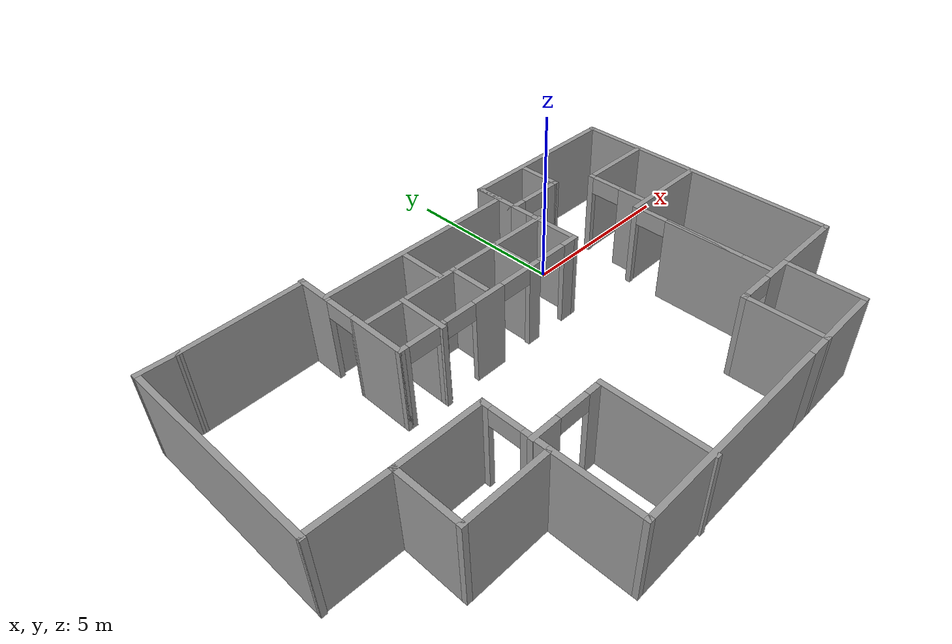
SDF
<?xml version='1.0'?>
<sdf version='1.6'>
  <model name='Building'>
    <pose frame=''>-3.39198 -3.1801 0 0 -0 0</pose>
    <link name='Wall_1'>
      <collision name='Wall_1_Collision'>
        <geometry>
          <box>
            <size>3.50098 0.15 2.5</size>
          </box>
        </geometry>
        <pose frame=''>0 0 1.25 0 -0 0</pose>
      </collision>
      <visual name='Wall_1_Visual'>
        <pose frame=''>0 0 1.25 0 -0 0</pose>
        <geometry>
          <box>
            <size>3.50098 0.15 2.5</size>
          </box>
        </geometry>
        <material>
          <script>
            <uri>file://media/materials/scripts/gazebo.material</uri>
            <name>Gazebo/Grey</name>
          </script>
          <ambient>1 1 1 1</ambient>
        </material>
        <meta>
          <layer>0</layer>
        </meta>
      </visual>
      <pose frame=''>-4.87425 5.02555 0 0 -0 0.024148</pose>
    </link>
    <link name='Wall_10'>
      <collision name='Wall_10_Collision'>
        <geometry>
          <box>
            <size>6 0.15 2.5</size>
          </box>
        </geometry>
        <pose frame=''>0 0 1.25 0 -0 0</pose>
      </collision>
      <visual name='Wall_10_Visual'>
        <pose frame=''>0 0 1.25 0 -0 0</pose>
        <geometry>
          <box>
            <size>6 0.15 2.5</size>
          </box>
        </geometry>
        <material>
          <script>
            <uri>file://media/materials/scripts/gazebo.material</uri>
            <name>Gazebo/Grey</name>
          </script>
          <ambient>1 1 1 1</ambient>
        </material>
        <meta>
          <layer>0</layer>
        </meta>
      </visual>
      <pose frame=''>-0.124254 -5.04582 0 0 -0 3.14159</pose>
    </link>
    <link name='Wall_11'>
      <collision name='Wall_11_Collision'>
        <geometry>
          <box>
            <size>2.5 0.15 2.5</size>
          </box>
        </geometry>
        <pose frame=''>0 0 1.25 0 -0 0</pose>
      </collision>
      <visual name='Wall_11_Visual'>
        <pose frame=''>0 0 1.25 0 -0 0</pose>
        <geometry>
          <box>
            <size>2.5 0.15 2.5</size>
          </box>
        </geometry>
        <material>
          <script>
            <uri>file://media/materials/scripts/gazebo.material</uri>
            <name>Gazebo/Grey</name>
          </script>
          <ambient>1 1 1 1</ambient>
        </material>
        <meta>
          <layer>0</layer>
        </meta>
      </visual>
      <pose frame=''>-3.04925 -3.87082 0 0 -0 1.5708</pose>
    </link>
    <link name='Wall_12'>
      <collision name='Wall_12_Collision'>
        <geometry>
          <box>
            <size>2.5 0.15 2.5</size>
          </box>
        </geometry>
        <pose frame=''>0 0 1.25 0 -0 0</pose>
      </collision>
      <visual name='Wall_12_Visual'>
        <pose frame=''>0 0 1.25 0 -0 0</pose>
        <geometry>
          <box>
            <size>2.5 0.15 2.5</size>
          </box>
        </geometry>
        <material>
          <script>
            <uri>file://media/materials/scripts/gazebo.material</uri>
            <name>Gazebo/Grey</name>
          </script>
          <ambient>1 1 1 1</ambient>
        </material>
        <meta>
          <layer>0</layer>
        </meta>
      </visual>
      <pose frame=''>-4.22425 -2.69582 0 0 -0 3.14159</pose>
    </link>
    <link name='Wall_13'>
      <collision name='Wall_13_Collision'>
        <geometry>
          <box>
            <size>2 0.15 2.5</size>
          </box>
        </geometry>
        <pose frame=''>0 0 1.25 0 -0 0</pose>
      </collision>
      <visual name='Wall_13_Visual'>
        <pose frame=''>0 0 1.25 0 -0 0</pose>
        <geometry>
          <box>
            <size>2 0.15 2.5</size>
          </box>
        </geometry>
        <material>
          <script>
            <uri>file://media/materials/scripts/gazebo.material</uri>
            <name>Gazebo/Grey</name>
          </script>
          <ambient>1 1 1 1</ambient>
        </material>
        <meta>
          <layer>0</layer>
        </meta>
      </visual>
      <pose frame=''>-5.39925 -1.77082 0 0 -0 1.5708</pose>
    </link>
    <link name='Wall_14'>
      <collision name='Wall_14_Collision'>
        <geometry>
          <box>
            <size>2.25039 0.15 2.5</size>
          </box>
        </geometry>
        <pose frame=''>0 0 1.25 0 -0 0</pose>
      </collision>
      <visual name='Wall_14_Visual'>
        <pose frame=''>0 0 1.25 0 -0 0</pose>
        <geometry>
          <box>
            <size>2.25039 0.15 2.5</size>
          </box>
        </geometry>
        <material>
          <script>
            <uri>file://media/materials/scripts/gazebo.material</uri>
            <name>Gazebo/Grey</name>
          </script>
          <ambient>1 1 1 1</ambient>
        </material>
        <meta>
          <layer>0</layer>
        </meta>
      </visual>
      <pose frame=''>-6.44925 -0.825593 0 0 -0 3.12233</pose>
    </link>
    <link name='Wall_15'>
      <collision name='Wall_15_Collision'>
        <geometry>
          <box>
            <size>6 0.15 2.5</size>
          </box>
        </geometry>
        <pose frame=''>0 0 1.25 0 -0 0</pose>
      </collision>
      <visual name='Wall_15_Visual'>
        <pose frame=''>0 0 1.25 0 -0 0</pose>
        <geometry>
          <box>
            <size>6 0.15 2.5</size>
          </box>
        </geometry>
        <material>
          <script>
            <uri>file://media/materials/scripts/gazebo.material</uri>
            <name>Gazebo/Grey</name>
          </script>
          <ambient>1 1 1 1</ambient>
        </material>
        <meta>
          <layer>0</layer>
        </meta>
      </visual>
      <pose frame=''>-7.49925 2.07918 0 0 -0 1.5708</pose>
    </link>
    <link name='Wall_17'>
      <collision name='Wall_17_Collision'>
        <geometry>
          <box>
            <size>1.10019 0.15 2.5</size>
          </box>
        </geometry>
        <pose frame=''>0 0 1.25 0 -0 0</pose>
      </collision>
      <visual name='Wall_17_Visual'>
        <pose frame=''>0 0 1.25 0 -0 0</pose>
        <geometry>
          <box>
            <size>1.10019 0.15 2.5</size>
          </box>
        </geometry>
        <material>
          <script>
            <uri>file://media/materials/scripts/gazebo.material</uri>
            <name>Gazebo/Grey</name>
          </script>
          <ambient>1 1 1 1</ambient>
        </material>
        <meta>
          <layer>0</layer>
        </meta>
      </visual>
      <pose frame=''>-7.02425 4.99463 0 0 -0 3.1215</pose>
    </link>
    <link name='Wall_19'>
      <collision name='Wall_19_Collision'>
        <geometry>
          <box>
            <size>2.5 0.15 2.5</size>
          </box>
        </geometry>
        <pose frame=''>0 0 1.25 0 -0 0</pose>
      </collision>
      <visual name='Wall_19_Visual'>
        <pose frame=''>0 0 1.25 0 -0 0</pose>
        <geometry>
          <box>
            <size>2.5 0.15 2.5</size>
          </box>
        </geometry>
        <material>
          <script>
            <uri>file://media/materials/scripts/gazebo.material</uri>
            <name>Gazebo/Grey</name>
          </script>
          <ambient>1 1 1 1</ambient>
        </material>
        <meta>
          <layer>0</layer>
        </meta>
      </visual>
      <pose frame=''>-4.22425 -0.84582 0 0 -0 0</pose>
    </link>
    <link name='Wall_2'>
      <pose frame=''>-3.19925 4.141 0 0 0 -1.5708</pose>
      <visual name='Wall_2_Visual_0'>
        <pose frame=''>-0.479527 0 1.25 0 -0 0</pose>
        <geometry>
          <box>
            <size>1.12186 0.15 2.5</size>
          </box>
        </geometry>
        <material>
          <script>
            <uri>file://media/materials/scripts/gazebo.material</uri>
            <name>Gazebo/Grey</name>
          </script>
          <ambient>1 1 1 1</ambient>
        </material>
        <meta>
          <layer>0</layer>
        </meta>
      </visual>
      <collision name='Wall_2_Collision_0'>
        <geometry>
          <box>
            <size>1.12186 0.15 2.5</size>
          </box>
        </geometry>
        <pose frame=''>-0.479527 0 1.25 0 -0 0</pose>
      </collision>
      <visual name='Wall_2_Visual_1'>
        <pose frame=''>1.01093 0 1.25 0 -0 0</pose>
        <geometry>
          <box>
            <size>0.059055 0.15 2.5</size>
          </box>
        </geometry>
        <material>
          <script>
            <uri>file://media/materials/scripts/gazebo.material</uri>
            <name>Gazebo/Grey</name>
          </script>
          <ambient>1 1 1 1</ambient>
        </material>
        <meta>
          <layer>0</layer>
        </meta>
      </visual>
      <collision name='Wall_2_Collision_1'>
        <geometry>
          <box>
            <size>0.059055 0.15 2.5</size>
          </box>
        </geometry>
        <pose frame=''>1.01093 0 1.25 0 -0 0</pose>
      </collision>
      <visual name='Wall_2_Visual_2'>
        <pose frame=''>0.531401 0 2.25 0 -0 0</pose>
        <geometry>
          <box>
            <size>0.9 0.15 0.5</size>
          </box>
        </geometry>
        <material>
          <script>
            <uri>file://media/materials/scripts/gazebo.material</uri>
            <name>Gazebo/Grey</name>
          </script>
          <ambient>1 1 1 1</ambient>
        </material>
        <meta>
          <layer>0</layer>
        </meta>
      </visual>
      <collision name='Wall_2_Collision_2'>
        <geometry>
          <box>
            <size>0.9 0.15 0.5</size>
          </box>
        </geometry>
        <pose frame=''>0.531401 0 2.25 0 -0 0</pose>
      </collision>
    </link>
    <link name='Wall_20'>
      <pose frame=''>-3.04925 -1.77082 0 0 0 -1.5708</pose>
      <visual name='Wall_20_Visual_0'>
        <pose frame=''>-0.846282 0 1.25 0 -0 0</pose>
        <geometry>
          <box>
            <size>0.307437 0.15 2.5</size>
          </box>
        </geometry>
        <material>
          <script>
            <uri>file://media/materials/scripts/gazebo.material</uri>
            <name>Gazebo/Grey</name>
          </script>
          <ambient>1 1 1 1</ambient>
        </material>
        <meta>
          <layer>0</layer>
        </meta>
      </visual>
      <collision name='Wall_20_Collision_0'>
        <geometry>
          <box>
            <size>0.307437 0.15 2.5</size>
          </box>
        </geometry>
        <pose frame=''>-0.846282 0 1.25 0 -0 0</pose>
      </collision>
      <visual name='Wall_20_Visual_1'>
        <pose frame=''>0.603718 0 1.25 0 -0 0</pose>
        <geometry>
          <box>
            <size>0.792563 0.15 2.5</size>
          </box>
        </geometry>
        <material>
          <script>
            <uri>file://media/materials/scripts/gazebo.material</uri>
            <name>Gazebo/Grey</name>
          </script>
          <ambient>1 1 1 1</ambient>
        </material>
        <meta>
          <layer>0</layer>
        </meta>
      </visual>
      <collision name='Wall_20_Collision_1'>
        <geometry>
          <box>
            <size>0.792563 0.15 2.5</size>
          </box>
        </geometry>
        <pose frame=''>0.603718 0 1.25 0 -0 0</pose>
      </collision>
      <visual name='Wall_20_Visual_2'>
        <pose frame=''>-0.242563 0 2.25 0 -0 0</pose>
        <geometry>
          <box>
            <size>0.9 0.15 0.5</size>
          </box>
        </geometry>
        <material>
          <script>
            <uri>file://media/materials/scripts/gazebo.material</uri>
            <name>Gazebo/Grey</name>
          </script>
          <ambient>1 1 1 1</ambient>
        </material>
        <meta>
          <layer>0</layer>
        </meta>
      </visual>
      <collision name='Wall_20_Collision_2'>
        <geometry>
          <box>
            <size>0.9 0.15 0.5</size>
          </box>
        </geometry>
        <pose frame=''>-0.242563 0 2.25 0 -0 0</pose>
      </collision>
    </link>
    <link name='Wall_22'>
      <pose frame=''>-2.02007 -2.25646 0 0 -0 0</pose>
      <visual name='Wall_22_Visual_0'>
        <pose frame=''>-0.705666 0 1.25 0 -0 0</pose>
        <geometry>
          <box>
            <size>0.838667 0.15 2.5</size>
          </box>
        </geometry>
        <material>
          <script>
            <uri>file://media/materials/scripts/gazebo.material</uri>
            <name>Gazebo/Grey</name>
          </script>
          <ambient>1 1 1 1</ambient>
        </material>
        <meta>
          <layer>0</layer>
        </meta>
      </visual>
      <collision name='Wall_22_Collision_0'>
        <geometry>
          <box>
            <size>0.838667 0.15 2.5</size>
          </box>
        </geometry>
        <pose frame=''>-0.705666 0 1.25 0 -0 0</pose>
      </collision>
      <visual name='Wall_22_Visual_1'>
        <pose frame=''>0.869334 0 1.25 0 -0 0</pose>
        <geometry>
          <box>
            <size>0.511333 0.15 2.5</size>
          </box>
        </geometry>
        <material>
          <script>
            <uri>file://media/materials/scripts/gazebo.material</uri>
            <name>Gazebo/Grey</name>
          </script>
          <ambient>1 1 1 1</ambient>
        </material>
        <meta>
          <layer>0</layer>
        </meta>
      </visual>
      <collision name='Wall_22_Collision_1'>
        <geometry>
          <box>
            <size>0.511333 0.15 2.5</size>
          </box>
        </geometry>
        <pose frame=''>0.869334 0 1.25 0 -0 0</pose>
      </collision>
      <visual name='Wall_22_Visual_2'>
        <pose frame=''>0.163667 0 2.25 0 -0 0</pose>
        <geometry>
          <box>
            <size>0.9 0.15 0.5</size>
          </box>
        </geometry>
        <material>
          <script>
            <uri>file://media/materials/scripts/gazebo.material</uri>
            <name>Gazebo/Grey</name>
          </script>
          <ambient>1 1 1 1</ambient>
        </material>
        <meta>
          <layer>0</layer>
        </meta>
      </visual>
      <collision name='Wall_22_Collision_2'>
        <geometry>
          <box>
            <size>0.9 0.15 0.5</size>
          </box>
        </geometry>
        <pose frame=''>0.163667 0 2.25 0 -0 0</pose>
      </collision>
    </link>
    <link name='Wall_23'>
      <collision name='Wall_23_Collision'>
        <geometry>
          <box>
            <size>3 0.15 2.5</size>
          </box>
        </geometry>
        <pose frame=''>0 0 1.25 0 -0 0</pose>
      </collision>
      <visual name='Wall_23_Visual'>
        <pose frame=''>0 0 1.25 0 -0 0</pose>
        <geometry>
          <box>
            <size>3 0.15 2.5</size>
          </box>
        </geometry>
        <material>
          <script>
            <uri>file://media/materials/scripts/gazebo.material</uri>
            <name>Gazebo/Grey</name>
          </script>
          <ambient>1 1 1 1</ambient>
        </material>
        <meta>
          <layer>0</layer>
        </meta>
      </visual>
      <pose frame=''>-0.970075 -3.68146 0 0 0 -1.5708</pose>
    </link>
    <link name='Wall_25'>
      <pose frame=''>4.47575 -2.94582 0 0 -0 3.14159</pose>
      <visual name='Wall_25_Visual_0'>
        <pose frame=''>-0.552636 0 1.25 0 -0 0</pose>
        <geometry>
          <box>
            <size>0.894728 0.15 2.5</size>
          </box>
        </geometry>
        <material>
          <script>
            <uri>file://media/materials/scripts/gazebo.material</uri>
            <name>Gazebo/Grey</name>
          </script>
          <ambient>1 1 1 1</ambient>
        </material>
        <meta>
          <layer>0</layer>
        </meta>
      </visual>
      <collision name='Wall_25_Collision_0'>
        <geometry>
          <box>
            <size>0.894728 0.15 2.5</size>
          </box>
        </geometry>
        <pose frame=''>-0.552636 0 1.25 0 -0 0</pose>
      </collision>
      <visual name='Wall_25_Visual_1'>
        <pose frame=''>0.897364 0 1.25 0 -0 0</pose>
        <geometry>
          <box>
            <size>0.205272 0.15 2.5</size>
          </box>
        </geometry>
        <material>
          <script>
            <uri>file://media/materials/scripts/gazebo.material</uri>
            <name>Gazebo/Grey</name>
          </script>
          <ambient>1 1 1 1</ambient>
        </material>
        <meta>
          <layer>0</layer>
        </meta>
      </visual>
      <collision name='Wall_25_Collision_1'>
        <geometry>
          <box>
            <size>0.205272 0.15 2.5</size>
          </box>
        </geometry>
        <pose frame=''>0.897364 0 1.25 0 -0 0</pose>
      </collision>
      <visual name='Wall_25_Visual_2'>
        <pose frame=''>0.344728 0 2.25 0 -0 0</pose>
        <geometry>
          <box>
            <size>0.9 0.15 0.5</size>
          </box>
        </geometry>
        <material>
          <script>
            <uri>file://media/materials/scripts/gazebo.material</uri>
            <name>Gazebo/Grey</name>
          </script>
          <ambient>1 1 1 1</ambient>
        </material>
        <meta>
          <layer>0</layer>
        </meta>
      </visual>
      <collision name='Wall_25_Collision_2'>
        <geometry>
          <box>
            <size>0.9 0.15 0.5</size>
          </box>
        </geometry>
        <pose frame=''>0.344728 0 2.25 0 -0 0</pose>
      </collision>
    </link>
    <link name='Wall_26'>
      <collision name='Wall_26_Collision'>
        <geometry>
          <box>
            <size>2.25 0.15 2.5</size>
          </box>
        </geometry>
        <pose frame=''>0 0 1.25 0 -0 0</pose>
      </collision>
      <visual name='Wall_26_Visual'>
        <pose frame=''>0 0 1.25 0 -0 0</pose>
        <geometry>
          <box>
            <size>2.25 0.15 2.5</size>
          </box>
        </geometry>
        <material>
          <script>
            <uri>file://media/materials/scripts/gazebo.material</uri>
            <name>Gazebo/Grey</name>
          </script>
          <ambient>1 1 1 1</ambient>
        </material>
        <meta>
          <layer>0</layer>
        </meta>
      </visual>
      <pose frame=''>3.55075 -3.99582 0 0 0 -1.5708</pose>
    </link>
    <link name='Wall_28'>
      <collision name='Wall_28_Collision'>
        <geometry>
          <box>
            <size>1.75 0.15 2.5</size>
          </box>
        </geometry>
        <pose frame=''>0 0 1.25 0 -0 0</pose>
      </collision>
      <visual name='Wall_28_Visual'>
        <pose frame=''>0 0 1.25 0 -0 0</pose>
        <geometry>
          <box>
            <size>1.75 0.15 2.5</size>
          </box>
        </geometry>
        <material>
          <script>
            <uri>file://media/materials/scripts/gazebo.material</uri>
            <name>Gazebo/Grey</name>
          </script>
          <ambient>1 1 1 1</ambient>
        </material>
        <meta>
          <layer>0</layer>
        </meta>
      </visual>
      <pose frame=''>-3.19925 2.33509 0 0 0 -1.5708</pose>
    </link>
    <link name='Wall_29'>
      <pose frame=''>-0.274254 1.53509 0 0 -0 0</pose>
      <visual name='Wall_29_Visual_0'>
        <pose frame=''>-2.85995 0 1.25 0 -0 0</pose>
        <geometry>
          <box>
            <size>0.280102 0.15 2.5</size>
          </box>
        </geometry>
        <material>
          <script>
            <uri>file://media/materials/scripts/gazebo.material</uri>
            <name>Gazebo/Grey</name>
          </script>
          <ambient>1 1 1 1</ambient>
        </material>
        <meta>
          <layer>0</layer>
        </meta>
      </visual>
      <collision name='Wall_29_Collision_0'>
        <geometry>
          <box>
            <size>0.280102 0.15 2.5</size>
          </box>
        </geometry>
        <pose frame=''>-2.85995 0 1.25 0 -0 0</pose>
      </collision>
      <visual name='Wall_29_Visual_1'>
        <pose frame=''>-1.70352 0 1.25 0 -0 0</pose>
        <geometry>
          <box>
            <size>0.232756 0.15 2.5</size>
          </box>
        </geometry>
        <material>
          <script>
            <uri>file://media/materials/scripts/gazebo.material</uri>
            <name>Gazebo/Grey</name>
          </script>
          <ambient>1 1 1 1</ambient>
        </material>
        <meta>
          <layer>0</layer>
        </meta>
      </visual>
      <collision name='Wall_29_Collision_1'>
        <geometry>
          <box>
            <size>0.232756 0.15 2.5</size>
          </box>
        </geometry>
        <pose frame=''>-1.70352 0 1.25 0 -0 0</pose>
      </collision>
      <visual name='Wall_29_Visual_2'>
        <pose frame=''>-0.206664 0 1.25 0 -0 0</pose>
        <geometry>
          <box>
            <size>0.960957 0.15 2.5</size>
          </box>
        </geometry>
        <material>
          <script>
            <uri>file://media/materials/scripts/gazebo.material</uri>
            <name>Gazebo/Grey</name>
          </script>
          <ambient>1 1 1 1</ambient>
        </material>
        <meta>
          <layer>0</layer>
        </meta>
      </visual>
      <collision name='Wall_29_Collision_2'>
        <geometry>
          <box>
            <size>0.960957 0.15 2.5</size>
          </box>
        </geometry>
        <pose frame=''>-0.206664 0 1.25 0 -0 0</pose>
      </collision>
      <visual name='Wall_29_Visual_3'>
        <pose frame=''>1.3711 0 1.25 0 -0 0</pose>
        <geometry>
          <box>
            <size>0.394579 0.15 2.5</size>
          </box>
        </geometry>
        <material>
          <script>
            <uri>file://media/materials/scripts/gazebo.material</uri>
            <name>Gazebo/Grey</name>
          </script>
          <ambient>1 1 1 1</ambient>
        </material>
        <meta>
          <layer>0</layer>
        </meta>
      </visual>
      <collision name='Wall_29_Collision_3'>
        <geometry>
          <box>
            <size>0.394579 0.15 2.5</size>
          </box>
        </geometry>
        <pose frame=''>1.3711 0 1.25 0 -0 0</pose>
      </collision>
      <visual name='Wall_29_Visual_4'>
        <pose frame=''>2.7342 0 1.25 0 -0 0</pose>
        <geometry>
          <box>
            <size>0.531607 0.15 2.5</size>
          </box>
        </geometry>
        <material>
          <script>
            <uri>file://media/materials/scripts/gazebo.material</uri>
            <name>Gazebo/Grey</name>
          </script>
          <ambient>1 1 1 1</ambient>
        </material>
        <meta>
          <layer>0</layer>
        </meta>
      </visual>
      <collision name='Wall_29_Collision_4'>
        <geometry>
          <box>
            <size>0.531607 0.15 2.5</size>
          </box>
        </geometry>
        <pose frame=''>2.7342 0 1.25 0 -0 0</pose>
      </collision>
      <visual name='Wall_29_Visual_5'>
        <pose frame=''>-2.2699 0 2.25 0 -0 0</pose>
        <geometry>
          <box>
            <size>0.9 0.15 0.5</size>
          </box>
        </geometry>
        <material>
          <script>
            <uri>file://media/materials/scripts/gazebo.material</uri>
            <name>Gazebo/Grey</name>
          </script>
          <ambient>1 1 1 1</ambient>
        </material>
        <meta>
          <layer>0</layer>
        </meta>
      </visual>
      <collision name='Wall_29_Collision_5'>
        <geometry>
          <box>
            <size>0.9 0.15 0.5</size>
          </box>
        </geometry>
        <pose frame=''>-2.2699 0 2.25 0 -0 0</pose>
      </collision>
      <visual name='Wall_29_Visual_6'>
        <pose frame=''>-1.13714 0 2.25 0 -0 0</pose>
        <geometry>
          <box>
            <size>0.9 0.15 0.5</size>
          </box>
        </geometry>
        <material>
          <script>
            <uri>file://media/materials/scripts/gazebo.material</uri>
            <name>Gazebo/Grey</name>
          </script>
          <ambient>1 1 1 1</ambient>
        </material>
        <meta>
          <layer>0</layer>
        </meta>
      </visual>
      <collision name='Wall_29_Collision_6'>
        <geometry>
          <box>
            <size>0.9 0.15 0.5</size>
          </box>
        </geometry>
        <pose frame=''>-1.13714 0 2.25 0 -0 0</pose>
      </collision>
      <visual name='Wall_29_Visual_7'>
        <pose frame=''>0.723815 0 2.25 0 -0 0</pose>
        <geometry>
          <box>
            <size>0.9 0.15 0.5</size>
          </box>
        </geometry>
        <material>
          <script>
            <uri>file://media/materials/scripts/gazebo.material</uri>
            <name>Gazebo/Grey</name>
          </script>
          <ambient>1 1 1 1</ambient>
        </material>
        <meta>
          <layer>0</layer>
        </meta>
      </visual>
      <collision name='Wall_29_Collision_7'>
        <geometry>
          <box>
            <size>0.9 0.15 0.5</size>
          </box>
        </geometry>
        <pose frame=''>0.723815 0 2.25 0 -0 0</pose>
      </collision>
      <visual name='Wall_29_Visual_8'>
        <pose frame=''>2.01839 0 2.25 0 -0 0</pose>
        <geometry>
          <box>
            <size>0.9 0.15 0.5</size>
          </box>
        </geometry>
        <material>
          <script>
            <uri>file://media/materials/scripts/gazebo.material</uri>
            <name>Gazebo/Grey</name>
          </script>
          <ambient>1 1 1 1</ambient>
        </material>
        <meta>
          <layer>0</layer>
        </meta>
      </visual>
      <collision name='Wall_29_Collision_8'>
        <geometry>
          <box>
            <size>0.9 0.15 0.5</size>
          </box>
        </geometry>
        <pose frame=''>2.01839 0 2.25 0 -0 0</pose>
      </collision>
    </link>
    <link name='Wall_30'>
      <collision name='Wall_30_Collision'>
        <geometry>
          <box>
            <size>1.66909 0.15 2.5</size>
          </box>
        </geometry>
        <pose frame=''>0 0 1.25 0 -0 0</pose>
      </collision>
      <visual name='Wall_30_Visual'>
        <pose frame=''>0 0 1.25 0 -0 0</pose>
        <geometry>
          <box>
            <size>1.66909 0.15 2.5</size>
          </box>
        </geometry>
        <material>
          <script>
            <uri>file://media/materials/scripts/gazebo.material</uri>
            <name>Gazebo/Grey</name>
          </script>
          <ambient>1 1 1 1</ambient>
        </material>
        <meta>
          <layer>0</layer>
        </meta>
      </visual>
      <pose frame=''>2.65075 2.29463 0 0 -0 1.5708</pose>
    </link>
    <link name='Wall_32'>
      <collision name='Wall_32_Collision'>
        <geometry>
          <box>
            <size>6 0.15 2.5</size>
          </box>
        </geometry>
        <pose frame=''>0 0 1.25 0 -0 0</pose>
      </collision>
      <visual name='Wall_32_Visual'>
        <pose frame=''>0 0 1.25 0 -0 0</pose>
        <geometry>
          <box>
            <size>6 0.15 2.5</size>
          </box>
        </geometry>
        <material>
          <script>
            <uri>file://media/materials/scripts/gazebo.material</uri>
            <name>Gazebo/Grey</name>
          </script>
          <ambient>1 1 1 1</ambient>
        </material>
        <meta>
          <layer>0</layer>
        </meta>
      </visual>
      <pose frame=''>-0.266441 4.21643 0 0 -0 0</pose>
    </link>
    <link name='Wall_34'>
      <collision name='Wall_34_Collision'>
        <geometry>
          <box>
            <size>6 0.15 2.5</size>
          </box>
        </geometry>
        <pose frame=''>0 0 1.25 0 -0 0</pose>
      </collision>
      <visual name='Wall_34_Visual'>
        <pose frame=''>0 0 1.25 0 -0 0</pose>
        <geometry>
          <box>
            <size>6 0.15 2.5</size>
          </box>
        </geometry>
        <material>
          <script>
            <uri>file://media/materials/scripts/gazebo.material</uri>
            <name>Gazebo/Grey</name>
          </script>
          <ambient>1 1 1 1</ambient>
        </material>
        <meta>
          <layer>0</layer>
        </meta>
      </visual>
      <pose frame=''>-0.225986 2.80049 0 0 -0 0</pose>
    </link>
    <link name='Wall_36'>
      <pose frame=''>4.89967 -0.813291 0 0 -0 1.5708</pose>
      <visual name='Wall_36_Visual_0'>
        <pose frame=''>-0.532455 0 1.25 0 -0 0</pose>
        <geometry>
          <box>
            <size>3.18509 0.15 2.5</size>
          </box>
        </geometry>
        <material>
          <script>
            <uri>file://media/materials/scripts/gazebo.material</uri>
            <name>Gazebo/Grey</name>
          </script>
          <ambient>1 1 1 1</ambient>
        </material>
        <meta>
          <layer>0</layer>
        </meta>
      </visual>
      <collision name='Wall_36_Collision_0'>
        <geometry>
          <box>
            <size>3.18509 0.15 2.5</size>
          </box>
        </geometry>
        <pose frame=''>-0.532455 0 1.25 0 -0 0</pose>
      </collision>
      <visual name='Wall_36_Visual_1'>
        <pose frame=''>-0.087904 0 1.25 0 -0 0</pose>
        <geometry>
          <box>
            <size>2.29599 0.15 2.5</size>
          </box>
        </geometry>
        <material>
          <script>
            <uri>file://media/materials/scripts/gazebo.material</uri>
            <name>Gazebo/Grey</name>
          </script>
          <ambient>1 1 1 1</ambient>
        </material>
        <meta>
          <layer>0</layer>
        </meta>
      </visual>
      <collision name='Wall_36_Collision_1'>
        <geometry>
          <box>
            <size>2.29599 0.15 2.5</size>
          </box>
        </geometry>
        <pose frame=''>-0.087904 0 1.25 0 -0 0</pose>
      </collision>
      <visual name='Wall_36_Visual_2'>
        <pose frame=''>2.04255 0 1.25 0 -0 0</pose>
        <geometry>
          <box>
            <size>0.164909 0.15 2.5</size>
          </box>
        </geometry>
        <material>
          <script>
            <uri>file://media/materials/scripts/gazebo.material</uri>
            <name>Gazebo/Grey</name>
          </script>
          <ambient>1 1 1 1</ambient>
        </material>
        <meta>
          <layer>0</layer>
        </meta>
      </visual>
      <collision name='Wall_36_Collision_2'>
        <geometry>
          <box>
            <size>0.164909 0.15 2.5</size>
          </box>
        </geometry>
        <pose frame=''>2.04255 0 1.25 0 -0 0</pose>
      </collision>
      <visual name='Wall_36_Visual_3'>
        <pose frame=''>1.51009 0 2.25 0 -0 0</pose>
        <geometry>
          <box>
            <size>0.9 0.15 0.5</size>
          </box>
        </geometry>
        <material>
          <script>
            <uri>file://media/materials/scripts/gazebo.material</uri>
            <name>Gazebo/Grey</name>
          </script>
          <ambient>1 1 1 1</ambient>
        </material>
        <meta>
          <layer>0</layer>
        </meta>
      </visual>
      <collision name='Wall_36_Collision_3'>
        <geometry>
          <box>
            <size>0.9 0.15 0.5</size>
          </box>
        </geometry>
        <pose frame=''>1.51009 0 2.25 0 -0 0</pose>
      </collision>
      <visual name='Wall_36_Visual_4'>
        <pose frame=''>1.51009 0 2.25 0 -0 0</pose>
        <geometry>
          <box>
            <size>0.9 0.15 0.5</size>
          </box>
        </geometry>
        <material>
          <script>
            <uri>file://media/materials/scripts/gazebo.material</uri>
            <name>Gazebo/Grey</name>
          </script>
          <ambient>1 1 1 1</ambient>
        </material>
        <meta>
          <layer>0</layer>
        </meta>
      </visual>
      <collision name='Wall_36_Collision_4'>
        <geometry>
          <box>
            <size>0.9 0.15 0.5</size>
          </box>
        </geometry>
        <pose frame=''>1.51009 0 2.25 0 -0 0</pose>
      </collision>
    </link>
    <link name='Wall_37'>
      <collision name='Wall_37_Collision'>
        <geometry>
          <box>
            <size>2.75 0.15 2.5</size>
          </box>
        </geometry>
        <pose frame=''>0 0 1.25 0 -0 0</pose>
      </collision>
      <visual name='Wall_37_Visual'>
        <pose frame=''>0 0 1.25 0 -0 0</pose>
        <geometry>
          <box>
            <size>2.75 0.15 2.5</size>
          </box>
        </geometry>
        <material>
          <script>
            <uri>file://media/materials/scripts/gazebo.material</uri>
            <name>Gazebo/Grey</name>
          </script>
          <ambient>1 1 1 1</ambient>
        </material>
        <meta>
          <layer>0</layer>
        </meta>
      </visual>
      <pose frame=''>6.19967 1.23671 0 0 -0 0</pose>
    </link>
    <link name='Wall_39'>
      <pose frame=''>5.30423 2.18818 0 0 -0 1.5708</pose>
      <visual name='Wall_39_Visual_0'>
        <pose frame=''>-0.540211 0 1.25 0 -0 0</pose>
        <geometry>
          <box>
            <size>0.919578 0.15 2.5</size>
          </box>
        </geometry>
        <material>
          <script>
            <uri>file://media/materials/scripts/gazebo.material</uri>
            <name>Gazebo/Grey</name>
          </script>
          <ambient>1 1 1 1</ambient>
        </material>
        <meta>
          <layer>0</layer>
        </meta>
      </visual>
      <collision name='Wall_39_Collision_0'>
        <geometry>
          <box>
            <size>0.919578 0.15 2.5</size>
          </box>
        </geometry>
        <pose frame=''>-0.540211 0 1.25 0 -0 0</pose>
      </collision>
      <visual name='Wall_39_Visual_1'>
        <pose frame=''>0.909789 0 1.25 0 -0 0</pose>
        <geometry>
          <box>
            <size>0.180422 0.15 2.5</size>
          </box>
        </geometry>
        <material>
          <script>
            <uri>file://media/materials/scripts/gazebo.material</uri>
            <name>Gazebo/Grey</name>
          </script>
          <ambient>1 1 1 1</ambient>
        </material>
        <meta>
          <layer>0</layer>
        </meta>
      </visual>
      <collision name='Wall_39_Collision_1'>
        <geometry>
          <box>
            <size>0.180422 0.15 2.5</size>
          </box>
        </geometry>
        <pose frame=''>0.909789 0 1.25 0 -0 0</pose>
      </collision>
      <visual name='Wall_39_Visual_2'>
        <pose frame=''>0.369578 0 2.25 0 -0 0</pose>
        <geometry>
          <box>
            <size>0.9 0.15 0.5</size>
          </box>
        </geometry>
        <material>
          <script>
            <uri>file://media/materials/scripts/gazebo.material</uri>
            <name>Gazebo/Grey</name>
          </script>
          <ambient>1 1 1 1</ambient>
        </material>
        <meta>
          <layer>0</layer>
        </meta>
      </visual>
      <collision name='Wall_39_Collision_2'>
        <geometry>
          <box>
            <size>0.9 0.15 0.5</size>
          </box>
        </geometry>
        <pose frame=''>0.369578 0 2.25 0 -0 0</pose>
      </collision>
    </link>
    <link name='Wall_4'>
      <pose frame=''>2.65075 3.97918 0 0 -0 1.5708</pose>
      <visual name='Wall_4_Visual_0'>
        <pose frame=''>0 0 1.25 0 -0 0</pose>
        <geometry>
          <box>
            <size>2 0.15 2.5</size>
          </box>
        </geometry>
        <material>
          <script>
            <uri>file://media/materials/scripts/gazebo.material</uri>
            <name>Gazebo/Grey</name>
          </script>
          <ambient>1 1 1 1</ambient>
        </material>
        <meta>
          <layer>0</layer>
        </meta>
      </visual>
      <collision name='Wall_4_Collision_0'>
        <geometry>
          <box>
            <size>2 0.15 2.5</size>
          </box>
        </geometry>
        <pose frame=''>0 0 1.25 0 -0 0</pose>
      </collision>
      <visual name='Wall_4_Visual_1'>
        <pose frame=''>0.358161 0 1.25 0 -0 0</pose>
        <geometry>
          <box>
            <size>1.28368 0.15 2.5</size>
          </box>
        </geometry>
        <material>
          <script>
            <uri>file://media/materials/scripts/gazebo.material</uri>
            <name>Gazebo/Grey</name>
          </script>
          <ambient>1 1 1 1</ambient>
        </material>
        <meta>
          <layer>0</layer>
        </meta>
      </visual>
      <collision name='Wall_4_Collision_1'>
        <geometry>
          <box>
            <size>1.28368 0.15 2.5</size>
          </box>
        </geometry>
        <pose frame=''>0.358161 0 1.25 0 -0 0</pose>
      </collision>
    </link>
    <link name='Wall_40'>
      <collision name='Wall_40_Collision'>
        <geometry>
          <box>
            <size>2.25 0.15 2.5</size>
          </box>
        </geometry>
        <pose frame=''>0 0 1.25 0 -0 0</pose>
      </collision>
      <visual name='Wall_40_Visual'>
        <pose frame=''>0 0 1.25 0 -0 0</pose>
        <geometry>
          <box>
            <size>2.25 0.15 2.5</size>
          </box>
        </geometry>
        <material>
          <script>
            <uri>file://media/materials/scripts/gazebo.material</uri>
            <name>Gazebo/Grey</name>
          </script>
          <ambient>1 1 1 1</ambient>
        </material>
        <meta>
          <layer>0</layer>
        </meta>
      </visual>
      <pose frame=''>6.35423 3.11318 0 0 -0 0</pose>
    </link>
    <link name='Wall_42'>
      <pose frame=''>3.51507 3.65006 0 0 -0 0</pose>
      <visual name='Wall_42_Visual_0'>
        <pose frame=''>-0.678172 0 1.25 0 -0 0</pose>
        <geometry>
          <box>
            <size>0.393656 0.15 2.5</size>
          </box>
        </geometry>
        <material>
          <script>
            <uri>file://media/materials/scripts/gazebo.material</uri>
            <name>Gazebo/Grey</name>
          </script>
          <ambient>1 1 1 1</ambient>
        </material>
        <meta>
          <layer>0</layer>
        </meta>
      </visual>
      <collision name='Wall_42_Collision_0'>
        <geometry>
          <box>
            <size>0.393656 0.15 2.5</size>
          </box>
        </geometry>
        <pose frame=''>-0.678172 0 1.25 0 -0 0</pose>
      </collision>
      <visual name='Wall_42_Visual_1'>
        <pose frame=''>0.646828 0 1.25 0 -0 0</pose>
        <geometry>
          <box>
            <size>0.456344 0.15 2.5</size>
          </box>
        </geometry>
        <material>
          <script>
            <uri>file://media/materials/scripts/gazebo.material</uri>
            <name>Gazebo/Grey</name>
          </script>
          <ambient>1 1 1 1</ambient>
        </material>
        <meta>
          <layer>0</layer>
        </meta>
      </visual>
      <collision name='Wall_42_Collision_1'>
        <geometry>
          <box>
            <size>0.456344 0.15 2.5</size>
          </box>
        </geometry>
        <pose frame=''>0.646828 0 1.25 0 -0 0</pose>
      </collision>
      <visual name='Wall_42_Visual_2'>
        <pose frame=''>-0.031344 0 2.25 0 -0 0</pose>
        <geometry>
          <box>
            <size>0.9 0.15 0.5</size>
          </box>
        </geometry>
        <material>
          <script>
            <uri>file://media/materials/scripts/gazebo.material</uri>
            <name>Gazebo/Grey</name>
          </script>
          <ambient>1 1 1 1</ambient>
        </material>
        <meta>
          <layer>0</layer>
        </meta>
      </visual>
      <collision name='Wall_42_Collision_2'>
        <geometry>
          <box>
            <size>0.9 0.15 0.5</size>
          </box>
        </geometry>
        <pose frame=''>-0.031344 0 2.25 0 -0 0</pose>
      </collision>
    </link>
    <link name='Wall_43'>
      <collision name='Wall_43_Collision'>
        <geometry>
          <box>
            <size>1.25 0.15 2.5</size>
          </box>
        </geometry>
        <pose frame=''>0 0 1.25 0 -0 0</pose>
      </collision>
      <visual name='Wall_43_Visual'>
        <pose frame=''>0 0 1.25 0 -0 0</pose>
        <geometry>
          <box>
            <size>1.25 0.15 2.5</size>
          </box>
        </geometry>
        <material>
          <script>
            <uri>file://media/materials/scripts/gazebo.material</uri>
            <name>Gazebo/Grey</name>
          </script>
          <ambient>1 1 1 1</ambient>
        </material>
        <meta>
          <layer>0</layer>
        </meta>
      </visual>
      <pose frame=''>4.31507 4.20006 0 0 -0 1.5708</pose>
    </link>
    <link name='Wall_45'>
      <collision name='Wall_45_Collision'>
        <geometry>
          <box>
            <size>1.5 0.15 2.5</size>
          </box>
        </geometry>
        <pose frame=''>0 0 1.25 0 -0 0</pose>
      </collision>
      <visual name='Wall_45_Visual'>
        <pose frame=''>0 0 1.25 0 -0 0</pose>
        <geometry>
          <box>
            <size>1.5 0.15 2.5</size>
          </box>
        </geometry>
        <material>
          <script>
            <uri>file://media/materials/scripts/gazebo.material</uri>
            <name>Gazebo/Grey</name>
          </script>
          <ambient>1 1 1 1</ambient>
        </material>
        <meta>
          <layer>0</layer>
        </meta>
      </visual>
      <pose frame=''>-0.804562 3.54143 0 0 0 -1.5708</pose>
    </link>
    <link name='Wall_47'>
      <collision name='Wall_47_Collision'>
        <geometry>
          <box>
            <size>1.5 0.15 2.5</size>
          </box>
        </geometry>
        <pose frame=''>0 0 1.25 0 -0 0</pose>
      </collision>
      <visual name='Wall_47_Visual'>
        <pose frame=''>0 0 1.25 0 -0 0</pose>
        <geometry>
          <box>
            <size>1.5 0.15 2.5</size>
          </box>
        </geometry>
        <material>
          <script>
            <uri>file://media/materials/scripts/gazebo.material</uri>
            <name>Gazebo/Grey</name>
          </script>
          <ambient>1 1 1 1</ambient>
        </material>
        <meta>
          <layer>0</layer>
        </meta>
      </visual>
      <pose frame=''>-2.01823 2.12549 0 0 0 -1.5708</pose>
    </link>
    <link name='Wall_5'>
      <collision name='Wall_5_Collision'>
        <geometry>
          <box>
            <size>5 0.15 2.5</size>
          </box>
        </geometry>
        <pose frame=''>0 0 1.25 0 -0 0</pose>
      </collision>
      <visual name='Wall_5_Visual'>
        <pose frame=''>0 0 1.25 0 -0 0</pose>
        <geometry>
          <box>
            <size>5 0.15 2.5</size>
          </box>
        </geometry>
        <material>
          <script>
            <uri>file://media/materials/scripts/gazebo.material</uri>
            <name>Gazebo/Grey</name>
          </script>
          <ambient>1 1 1 1</ambient>
        </material>
        <meta>
          <layer>0</layer>
        </meta>
      </visual>
      <pose frame=''>5.07575 4.90418 0 0 -0 0</pose>
    </link>
    <link name='Wall_50'>
      <collision name='Wall_50_Collision'>
        <geometry>
          <box>
            <size>1.25 0.15 2.5</size>
          </box>
        </geometry>
        <pose frame=''>0 0 1.25 0 -0 0</pose>
      </collision>
      <visual name='Wall_50_Visual'>
        <pose frame=''>0 0 1.25 0 -0 0</pose>
        <geometry>
          <box>
            <size>1.25 0.15 2.5</size>
          </box>
        </geometry>
        <material>
          <script>
            <uri>file://media/materials/scripts/gazebo.material</uri>
            <name>Gazebo/Grey</name>
          </script>
          <ambient>1 1 1 1</ambient>
        </material>
        <meta>
          <layer>0</layer>
        </meta>
      </visual>
      <pose frame=''>-0.400007 2.25049 0 0 0 -1.5708</pose>
    </link>
    <link name='Wall_52'>
      <collision name='Wall_52_Collision'>
        <geometry>
          <box>
            <size>1.25 0.15 2.5</size>
          </box>
        </geometry>
        <pose frame=''>0 0 1.25 0 -0 0</pose>
      </collision>
      <visual name='Wall_52_Visual'>
        <pose frame=''>0 0 1.25 0 -0 0</pose>
        <geometry>
          <box>
            <size>1.25 0.15 2.5</size>
          </box>
        </geometry>
        <material>
          <script>
            <uri>file://media/materials/scripts/gazebo.material</uri>
            <name>Gazebo/Grey</name>
          </script>
          <ambient>1 1 1 1</ambient>
        </material>
        <meta>
          <layer>0</layer>
        </meta>
      </visual>
      <pose frame=''>1.01594 2.25049 0 0 0 -1.5708</pose>
    </link>
    <link name='Wall_6'>
      <collision name='Wall_6_Collision'>
        <geometry>
          <box>
            <size>8 0.15 2.5</size>
          </box>
        </geometry>
        <pose frame=''>0 0 1.25 0 -0 0</pose>
      </collision>
      <visual name='Wall_6_Visual'>
        <pose frame=''>0 0 1.25 0 -0 0</pose>
        <geometry>
          <box>
            <size>8 0.15 2.5</size>
          </box>
        </geometry>
        <material>
          <script>
            <uri>file://media/materials/scripts/gazebo.material</uri>
            <name>Gazebo/Grey</name>
          </script>
          <ambient>1 1 1 1</ambient>
        </material>
        <meta>
          <layer>0</layer>
        </meta>
      </visual>
      <pose frame=''>7.50075 0.97918 0 0 0 -1.5708</pose>
    </link>
    <link name='Wall_7'>
      <collision name='Wall_7_Collision'>
        <geometry>
          <box>
            <size>2.25 0.15 2.5</size>
          </box>
        </geometry>
        <pose frame=''>0 0 1.25 0 -0 0</pose>
      </collision>
      <visual name='Wall_7_Visual'>
        <pose frame=''>0 0 1.25 0 -0 0</pose>
        <geometry>
          <box>
            <size>2.25 0.15 2.5</size>
          </box>
        </geometry>
        <material>
          <script>
            <uri>file://media/materials/scripts/gazebo.material</uri>
            <name>Gazebo/Grey</name>
          </script>
          <ambient>1 1 1 1</ambient>
        </material>
        <meta>
          <layer>0</layer>
        </meta>
      </visual>
      <pose frame=''>6.45075 -2.94582 0 0 -0 3.14159</pose>
    </link>
    <link name='Wall_8'>
      <collision name='Wall_8_Collision'>
        <geometry>
          <box>
            <size>2.25 0.15 2.5</size>
          </box>
        </geometry>
        <pose frame=''>0 0 1.25 0 -0 0</pose>
      </collision>
      <visual name='Wall_8_Visual'>
        <pose frame=''>0 0 1.25 0 -0 0</pose>
        <geometry>
          <box>
            <size>2.25 0.15 2.5</size>
          </box>
        </geometry>
        <material>
          <script>
            <uri>file://media/materials/scripts/gazebo.material</uri>
            <name>Gazebo/Grey</name>
          </script>
          <ambient>1 1 1 1</ambient>
        </material>
        <meta>
          <layer>0</layer>
        </meta>
      </visual>
      <pose frame=''>5.40075 -3.99582 0 0 0 -1.5708</pose>
    </link>
    <link name='Wall_9'>
      <collision name='Wall_9_Collision'>
        <geometry>
          <box>
            <size>2.75 0.15 2.5</size>
          </box>
        </geometry>
        <pose frame=''>0 0 1.25 0 -0 0</pose>
      </collision>
      <visual name='Wall_9_Visual'>
        <pose frame=''>0 0 1.25 0 -0 0</pose>
        <geometry>
          <box>
            <size>2.75 0.15 2.5</size>
          </box>
        </geometry>
        <material>
          <script>
            <uri>file://media/materials/scripts/gazebo.material</uri>
            <name>Gazebo/Grey</name>
          </script>
          <ambient>1 1 1 1</ambient>
        </material>
        <meta>
          <layer>0</layer>
        </meta>
      </visual>
      <pose frame=''>4.10075 -5.04582 0 0 -0 3.14159</pose>
    </link>
    <static>1</static>
  </model>
</sdf>
